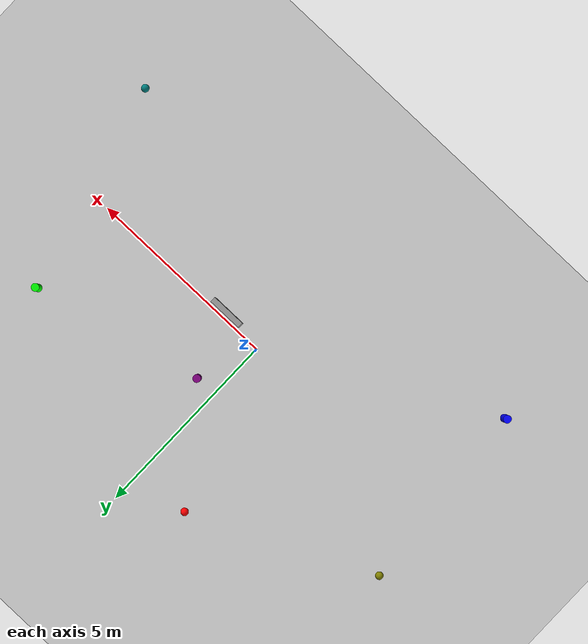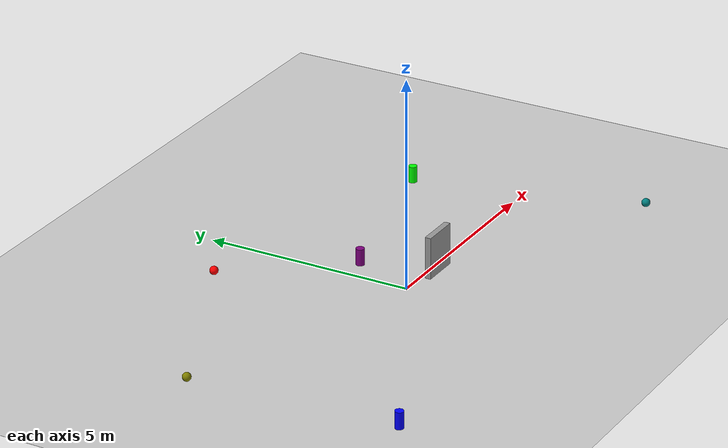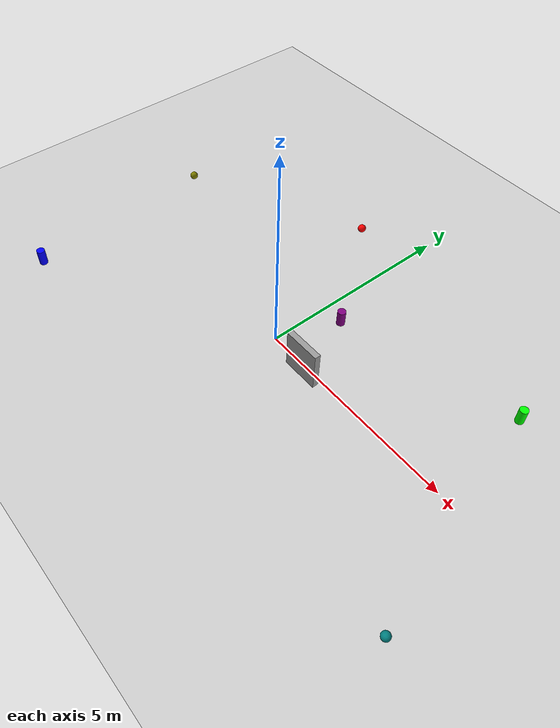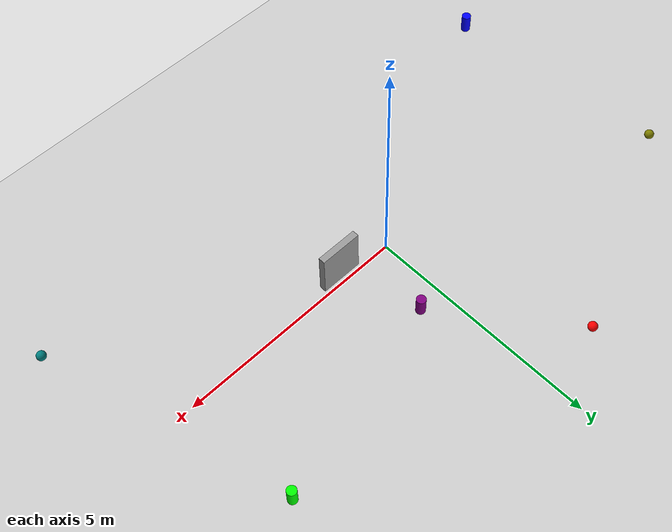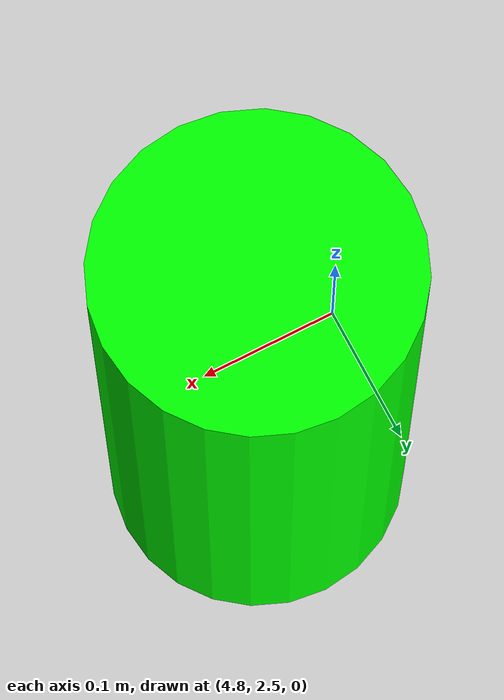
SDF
<sdf version="1.7">
 <world name="default">
  <light name="sun" type="directional">
   <pose>0 0 10 0 -0 0</pose>
   <diffuse>0.8 0.8 0.8 1</diffuse>
   <specular>0.2 0.2 0.2 1</specular>
   <attenuation>
    <range>1000</range>
    <constant>0.9</constant>
    <linear>0.01</linear>
    <quadratic>0.001</quadratic>
   </attenuation>
   <direction>-0.5 0.1 -0.9</direction>
   <spot><inner_angle>0</inner_angle><outer_angle>0</outer_angle><falloff>0</falloff></spot>
  </light>
  <model name="ground_plane">
   <static>1</static>
   <link name="link">
    <collision name="collision">
     <geometry><plane><normal>0 0 1</normal><size>100 100</size></plane></geometry>
     <surface>
      <contact><collide_bitmask>65535</collide_bitmask></contact>
      <friction><ode><mu>100</mu><mu2>50</mu2></ode></friction>
     </surface>
    </collision>
    <visual name="visual">
     <cast_shadows>0</cast_shadows>
     <geometry><plane><normal>0 0 1</normal><size>100 100</size></plane></geometry>
     <material>
      <script><uri>file://media/materials/scripts/gazebo.material</uri><name>Gazebo/Grey</name></script>
     </material>
    </visual>
   </link>
  </model>
  <physics type="ode">
   <real_time_update_rate>1000</real_time_update_rate>
   <max_step_size>0.001</max_step_size>
   <real_time_factor>1</real_time_factor>
   <ode>
    <solver>
     <type>quick</type>
     <iters>150</iters>
     <precon_iters>0</precon_iters>
     <sor>1.4</sor>
     <use_dynamic_moi_rescaling>1</use_dynamic_moi_rescaling>
    </solver>
    <constraints>
     <cfm>1e-05</cfm>
     <erp>0.2</erp>
     <contact_max_correcting_vel>2000</contact_max_correcting_vel>
     <contact_surface_layer>0.01</contact_surface_layer>
    </constraints>
   </ode>
  </physics>
  <scene><ambient>0.4 0.4 0.4 1</ambient><background>0.7 0.7 0.7 1</background><shadows>1</shadows></scene>
  <gravity>0 0 -9.8</gravity>
  <magnetic_field>6e-06 2.3e-05 -4.2e-05</magnetic_field>
  <atmosphere type="adiabatic"/>
  <spherical_coordinates>
   <surface_model>EARTH_WGS84</surface_model>
   <latitude_deg>0</latitude_deg>
   <longitude_deg>0</longitude_deg>
   <elevation>0</elevation>
   <heading_deg>0</heading_deg>
  </spherical_coordinates>
  <model name="red_sphere_final_0">
   <link name="link">
    <inertial>
     <mass>1</mass>
     <inertia><ixx>0.1</ixx><ixy>0</ixy><ixz>0</ixz><iyy>0.1</iyy><iyz>0</iyz><izz>0.1</izz></inertia>
    </inertial>
    <visual name="visual">
     <geometry><sphere><radius>0.1</radius></sphere></geometry>
     <material>
      <script><name>Gazebo/Grey</name><uri>file://media/materials/scripts/gazebo.material</uri></script>
      <shader type="pixel"><normal_map>__default__</normal_map></shader>
      <ambient>0.3 0.3 0.3 1</ambient>
      <diffuse>1 0 0 1</diffuse>
      <specular>0.5 0.01 0.01 1</specular>
      <emissive>1 0 0 1</emissive>
      <lighting>1</lighting>
     </material>
    </visual>
    <collision name="collision">
     <geometry><sphere><radius>0.1</radius></sphere></geometry>
     <surface>
      <friction>
       <ode><mu>1</mu><mu2>1</mu2><fdir1>0 0 0</fdir1><slip1>0</slip1><slip2>0</slip2></ode>
       <torsional>
        <coefficient>1</coefficient>
        <patch_radius>0</patch_radius>
        <surface_radius>0</surface_radius>
        <use_patch_radius>1</use_patch_radius>
        <ode><slip>0</slip></ode>
       </torsional>
      </friction>
      <bounce><restitution_coefficient>0</restitution_coefficient><threshold>1e+06</threshold></bounce>
      <contact>
       <collide_without_contact>0</collide_without_contact>
       <collide_without_contact_bitmask>1</collide_without_contact_bitmask>
       <collide_bitmask>1</collide_bitmask>
       <ode>
        <soft_cfm>0</soft_cfm>
        <soft_erp>0.2</soft_erp>
        <kp>1e+13</kp>
        <kd>1</kd>
        <max_vel>0.01</max_vel>
        <min_depth>0</min_depth>
       </ode>
       <bullet>
        <split_impulse>1</split_impulse>
        <split_impulse_penetration_threshold>-0.01</split_impulse_penetration_threshold>
        <soft_cfm>0</soft_cfm>
        <soft_erp>0.2</soft_erp>
        <kp>1e+13</kp>
        <kd>1</kd>
       </bullet>
      </contact>
     </surface>
    </collision>
   </link>
   <static>0</static>
   <pose>-1.44419 4.06886 0.1 0 -0 0</pose>
  </model>
  <model name="blue_cylinder_final">
   <link name="link">
    <inertial>
     <mass>1</mass>
     <inertia><ixx>0.145833</ixx><ixy>0</ixy><ixz>0</ixz><iyy>0.145833</iyy><iyz>0</iyz><izz>0.125</izz></inertia>
    </inertial>
    <visual name="visual">
     <geometry><cylinder><radius>0.1</radius><length>0.4</length></cylinder></geometry>
     <material>
      <script><name>Gazebo/Grey</name><uri>file://media/materials/scripts/gazebo.material</uri></script>
      <shader type="pixel"><normal_map>__default__</normal_map></shader>
      <ambient>0.3 0.3 0.3 1</ambient>
      <diffuse>0 0 1 1</diffuse>
      <specular>0.01 0.01 0.01 1</specular>
      <emissive>0 0 1 1</emissive>
     </material>
    </visual>
    <collision name="collision">
     <geometry><cylinder><radius>0.1</radius><length>0.4</length></cylinder></geometry>
     <surface>
      <friction>
       <ode><mu>1</mu><mu2>1</mu2><fdir1>0 0 0</fdir1><slip1>0</slip1><slip2>0</slip2></ode>
       <torsional>
        <coefficient>1</coefficient>
        <patch_radius>0</patch_radius>
        <surface_radius>0</surface_radius>
        <use_patch_radius>1</use_patch_radius>
        <ode><slip>0</slip></ode>
       </torsional>
      </friction>
      <bounce><restitution_coefficient>0</restitution_coefficient><threshold>1e+06</threshold></bounce>
      <contact>
       <collide_without_contact>0</collide_without_contact>
       <collide_without_contact_bitmask>1</collide_without_contact_bitmask>
       <collide_bitmask>1</collide_bitmask>
       <ode>
        <soft_cfm>0</soft_cfm>
        <soft_erp>0.2</soft_erp>
        <kp>1e+13</kp>
        <kd>1</kd>
        <max_vel>0.01</max_vel>
        <min_depth>0</min_depth>
       </ode>
       <bullet>
        <split_impulse>1</split_impulse>
        <split_impulse_penetration_threshold>-0.01</split_impulse_penetration_threshold>
        <soft_cfm>0</soft_cfm>
        <soft_erp>0.2</soft_erp>
        <kp>1e+13</kp>
        <kd>1</kd>
       </bullet>
      </contact>
     </surface>
    </collision>
   </link>
   <static>0</static>
   <pose>-5.5415 -2.9331 0.199991 0 -0 0</pose>
  </model>
  <model name="unit_box">
   <pose>1.11489 -0.164257 0.5 -1e-06 -0 -4e-06</pose>
   <link name="link">
    <inertial>
     <mass>1</mass>
     <inertia>
      <ixx>0.166667</ixx>
      <ixy>0</ixy>
      <ixz>0</ixz>
      <iyy>0.166667</iyy>
      <iyz>0</iyz>
      <izz>0.166667</izz>
     </inertia>
    </inertial>
    <collision name="collision"><geometry><box><size>0.894688 0.143191 1</size></box></geometry></collision>
    <visual name="visual">
     <geometry><box><size>0.894688 0.143191 1</size></box></geometry>
     <material>
      <script><name>Gazebo/Grey</name><uri>file://media/materials/scripts/gazebo.material</uri></script>
     </material>
    </visual>
   </link>
  </model>
  <model name="red_sphere_yellow">
   <link name="link">
    <inertial>
     <mass>1</mass>
     <inertia><ixx>0.1</ixx><ixy>0</ixy><ixz>0</ixz><iyy>0.1</iyy><iyz>0</iyz><izz>0.1</izz></inertia>
    </inertial>
    <visual name="visual">
     <geometry><sphere><radius>0.1</radius></sphere></geometry>
     <material>
      <script><name>Gazebo/Grey</name><uri>file://media/materials/scripts/gazebo.material</uri></script>
      <shader type="pixel"><normal_map>__default__</normal_map></shader>
      <ambient>0.5 0.5 0 1</ambient>
      <diffuse>0.5 0.5 0 1</diffuse>
      <specular>0.5 0.5 0 1</specular>
      <emissive>1 1 0 1</emissive>
      <lighting>1</lighting>
     </material>
    </visual>
    <collision name="collision">
     <geometry><sphere><radius>0.1</radius></sphere></geometry>
     <surface>
      <friction>
       <ode><mu>1</mu><mu2>1</mu2><fdir1>0 0 0</fdir1><slip1>0</slip1><slip2>0</slip2></ode>
       <torsional>
        <coefficient>1</coefficient>
        <patch_radius>0</patch_radius>
        <surface_radius>0</surface_radius>
        <use_patch_radius>1</use_patch_radius>
        <ode><slip>0</slip></ode>
       </torsional>
      </friction>
      <bounce><restitution_coefficient>0</restitution_coefficient><threshold>1e+06</threshold></bounce>
      <contact>
       <collide_without_contact>0</collide_without_contact>
       <collide_without_contact_bitmask>1</collide_without_contact_bitmask>
       <collide_bitmask>1</collide_bitmask>
       <ode>
        <soft_cfm>0</soft_cfm>
        <soft_erp>0.2</soft_erp>
        <kp>1e+13</kp>
        <kd>1</kd>
        <max_vel>0.01</max_vel>
        <min_depth>0</min_depth>
       </ode>
       <bullet>
        <split_impulse>1</split_impulse>
        <split_impulse_penetration_threshold>-0.01</split_impulse_penetration_threshold>
        <soft_cfm>0</soft_cfm>
        <soft_erp>0.2</soft_erp>
        <kp>1e+13</kp>
        <kd>1</kd>
       </bullet>
      </contact>
     </surface>
    </collision>
   </link>
   <static>0</static>
   <pose>-5.94713 1.94446 0.1 0 -0 0</pose>
  </model>
  <model name="green_cylinder">
   <link name="link">
    <inertial>
     <mass>1</mass>
     <inertia><ixx>0.145833</ixx><ixy>0</ixy><ixz>0</ixz><iyy>0.145833</iyy><iyz>0</iyz><izz>0.125</izz></inertia>
    </inertial>
    <visual name="visual">
     <geometry><cylinder><radius>0.1</radius><length>0.4</length></cylinder></geometry>
     <material>
      <script><name>Gazebo/Grey</name><uri>file://media/materials/scripts/gazebo.material</uri></script>
      <shader type="pixel"><normal_map>__default__</normal_map></shader>
      <ambient>0.3 0.3 0.3 1</ambient>
      <diffuse>0 1 0 1</diffuse>
      <specular>0.01 0.01 0.01 1</specular>
      <emissive>0 1 0 1</emissive>
     </material>
    </visual>
    <collision name="collision">
     <geometry><cylinder><radius>0.1</radius><length>0.4</length></cylinder></geometry>
     <surface>
      <friction>
       <ode><mu>1</mu><mu2>1</mu2><fdir1>0 0 0</fdir1><slip1>0</slip1><slip2>0</slip2></ode>
       <torsional>
        <coefficient>1</coefficient>
        <patch_radius>0</patch_radius>
        <surface_radius>0</surface_radius>
        <use_patch_radius>1</use_patch_radius>
        <ode><slip>0</slip></ode>
       </torsional>
      </friction>
      <bounce><restitution_coefficient>0</restitution_coefficient><threshold>1e+06</threshold></bounce>
      <contact>
       <collide_without_contact>0</collide_without_contact>
       <collide_without_contact_bitmask>1</collide_without_contact_bitmask>
       <collide_bitmask>1</collide_bitmask>
       <ode>
        <soft_cfm>0</soft_cfm>
        <soft_erp>0.2</soft_erp>
        <kp>1e+13</kp>
        <kd>1</kd>
        <max_vel>0.01</max_vel>
        <min_depth>0</min_depth>
       </ode>
       <bullet>
        <split_impulse>1</split_impulse>
        <split_impulse_penetration_threshold>-0.01</split_impulse_penetration_threshold>
        <soft_cfm>0</soft_cfm>
        <soft_erp>0.2</soft_erp>
        <kp>1e+13</kp>
        <kd>1</kd>
       </bullet>
      </contact>
     </surface>
    </collision>
   </link>
   <static>0</static>
   <pose>4.89566 2.57152 0.2 0 -0 0</pose>
  </model>
  <model name="cyan_sphere">
   <link name="link">
    <inertial>
     <mass>1</mass>
     <inertia><ixx>0.1</ixx><ixy>0</ixy><ixz>0</ixz><iyy>0.1</iyy><iyz>0</iyz><izz>0.1</izz></inertia>
    </inertial>
    <visual name="visual">
     <geometry><sphere><radius>0.1</radius></sphere></geometry>
     <material>
      <script><name>Gazebo/Grey</name><uri>file://media/materials/scripts/gazebo.material</uri></script>
      <shader type="pixel"><normal_map>__default__</normal_map></shader>
      <ambient>0.3 0.3 0.3 1</ambient>
      <diffuse>0 0.5 0.5 1</diffuse>
      <specular>0 1 1 1</specular>
      <emissive>0 1 1 1</emissive>
      <lighting>1</lighting>
     </material>
    </visual>
    <collision name="collision">
     <geometry><sphere><radius>0.1</radius></sphere></geometry>
     <surface>
      <friction>
       <ode><mu>1</mu><mu2>1</mu2><fdir1>0 0 0</fdir1><slip1>0</slip1><slip2>0</slip2></ode>
       <torsional>
        <coefficient>1</coefficient>
        <patch_radius>0</patch_radius>
        <surface_radius>0</surface_radius>
        <use_patch_radius>1</use_patch_radius>
        <ode><slip>0</slip></ode>
       </torsional>
      </friction>
      <bounce><restitution_coefficient>0</restitution_coefficient><threshold>1e+06</threshold></bounce>
      <contact>
       <collide_without_contact>0</collide_without_contact>
       <collide_without_contact_bitmask>1</collide_without_contact_bitmask>
       <collide_bitmask>1</collide_bitmask>
       <ode>
        <soft_cfm>0</soft_cfm>
        <soft_erp>0.2</soft_erp>
        <kp>1e+13</kp>
        <kd>1</kd>
        <max_vel>0.01</max_vel>
        <min_depth>0</min_depth>
       </ode>
       <bullet>
        <split_impulse>1</split_impulse>
        <split_impulse_penetration_threshold>-0.01</split_impulse_penetration_threshold>
        <soft_cfm>0</soft_cfm>
        <soft_erp>0.2</soft_erp>
        <kp>1e+13</kp>
        <kd>1</kd>
       </bullet>
      </contact>
     </surface>
    </collision>
   </link>
   <static>0</static>
   <pose>6.32292 -2.75169 0.1 0 -0 0</pose>
  </model>
  <model name="violet_cylinder">
   <link name="link">
    <inertial>
     <mass>1</mass>
     <inertia><ixx>0.145833</ixx><ixy>0</ixy><ixz>0</ixz><iyy>0.145833</iyy><iyz>0</iyz><izz>0.125</izz></inertia>
    </inertial>
    <visual name="visual">
     <geometry><cylinder><radius>0.1</radius><length>0.4</length></cylinder></geometry>
     <material>
      <script><name>Gazebo/Grey</name><uri>file://media/materials/scripts/gazebo.material</uri></script>
      <shader type="pixel"><normal_map>__default__</normal_map></shader>
      <ambient>0.3 0.3 0.3 1</ambient>
      <diffuse>0.5 0 0.5 1</diffuse>
      <specular>0.3 0 0.7 1</specular>
      <emissive>0.5 0 1 1</emissive>
     </material>
    </visual>
    <collision name="collision">
     <geometry><cylinder><radius>0.1</radius><length>0.4</length></cylinder></geometry>
     <surface>
      <friction>
       <ode><mu>1</mu><mu2>1</mu2><fdir1>0 0 0</fdir1><slip1>0</slip1><slip2>0</slip2></ode>
       <torsional>
        <coefficient>1</coefficient>
        <patch_radius>0</patch_radius>
        <surface_radius>0</surface_radius>
        <use_patch_radius>1</use_patch_radius>
        <ode><slip>0</slip></ode>
       </torsional>
      </friction>
      <bounce><restitution_coefficient>0</restitution_coefficient><threshold>1e+06</threshold></bounce>
      <contact>
       <collide_without_contact>0</collide_without_contact>
       <collide_without_contact_bitmask>1</collide_without_contact_bitmask>
       <collide_bitmask>1</collide_bitmask>
       <ode>
        <soft_cfm>0</soft_cfm>
        <soft_erp>0.2</soft_erp>
        <kp>1e+13</kp>
        <kd>1</kd>
        <max_vel>0.01</max_vel>
        <min_depth>0</min_depth>
       </ode>
       <bullet>
        <split_impulse>1</split_impulse>
        <split_impulse_penetration_threshold>-0.01</split_impulse_penetration_threshold>
        <soft_cfm>0</soft_cfm>
        <soft_erp>0.2</soft_erp>
        <kp>1e+13</kp>
        <kd>1</kd>
       </bullet>
      </contact>
     </surface>
    </collision>
   </link>
   <static>0</static>
   <pose>0.561961 1.49314 0.2 0 -0 0</pose>
  </model>
 </world>
</sdf>
